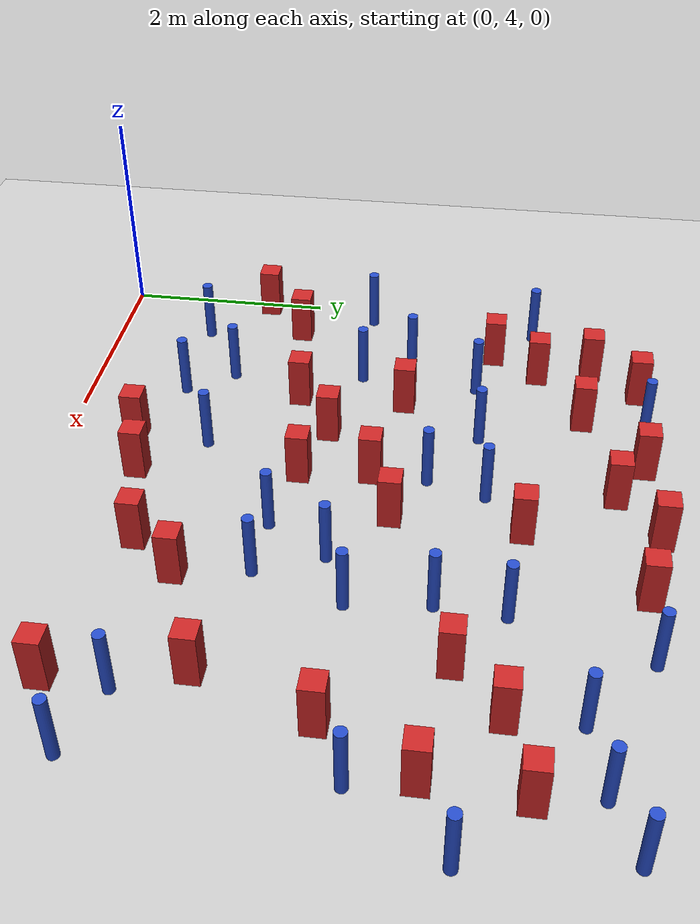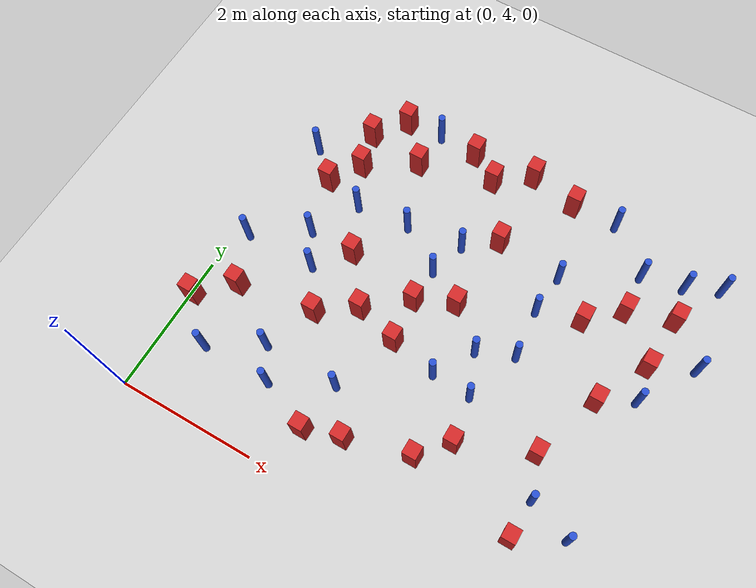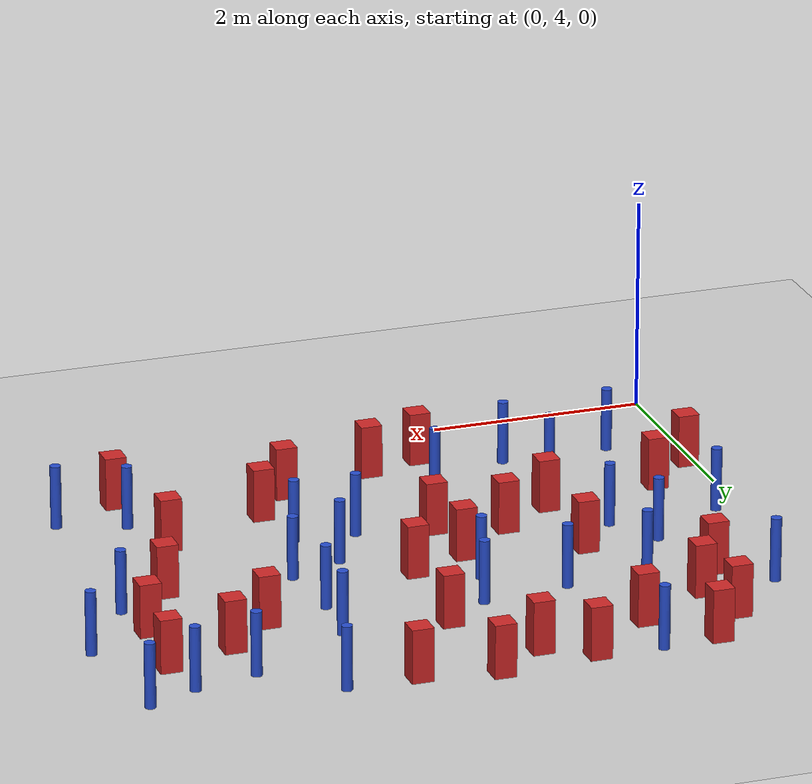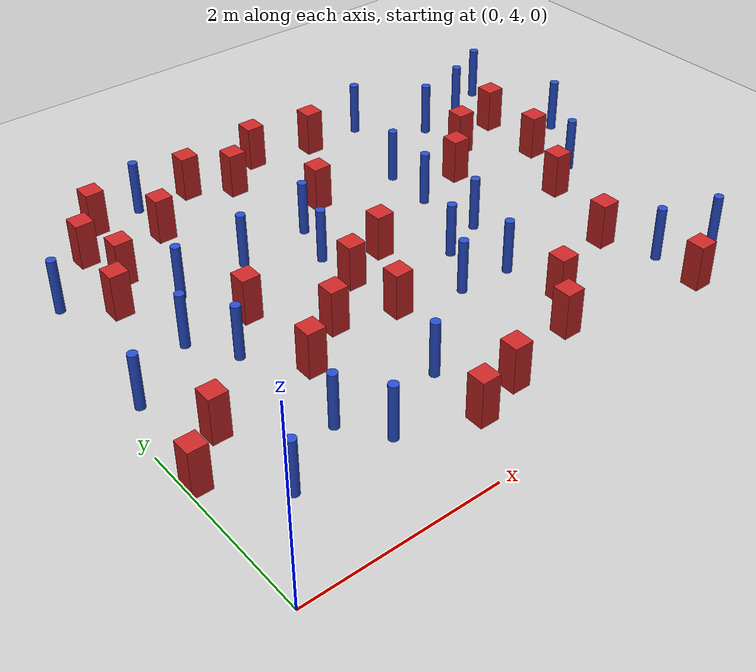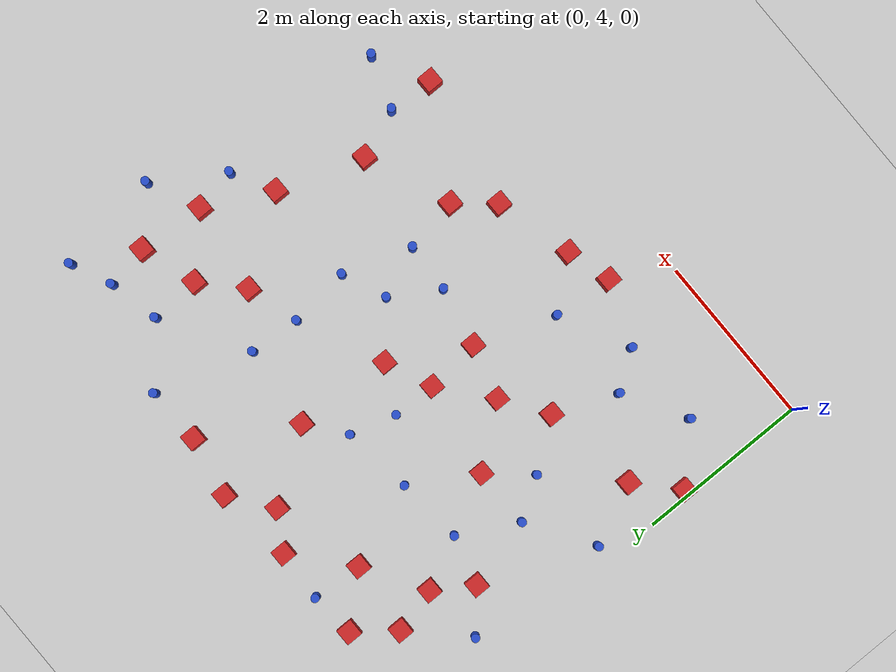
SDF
<sdf version="1.6">
 <world name="default">
  <model name="ground_plane">
   <static>1</static>
   <link name="link">
    <collision name="collision">
     <geometry><plane><normal>0 0 1</normal><size>100 100</size></plane></geometry>
     <surface><friction><ode><mu>100</mu><mu2>50</mu2></ode></friction></surface>
    </collision>
    <visual name="visual">
     <cast_shadows>0</cast_shadows>
     <geometry><plane><normal>0 0 1</normal><size>100 100</size></plane></geometry>
     <material>
      <ambient>1.0 1.0 1.0 1.0</ambient>
      <diffuse>0.8 0.8 0.8 1.0</diffuse>
      <specular>0.01 0.01 0.01 1.000000</specular>
     </material>
    </visual>
   </link>
  </model>
  <model name="pole_obstacle5">
   <static>true</static>
   <pose>5.98320436551 7.11460259568 -9.47619616065e-06 5.49618799737e-07 2.36310414037e-07 -1.55090534814e-07</pose>
   <link name="link">
    <pose>0 0 0.3 0 -0 0</pose>
    <inertial>
     <mass>1</mass>
     <inertia><ixx>0.145833</ixx><ixy>0</ixy><ixz>0</ixz><iyy>0.145833</iyy><iyz>0</iyz><izz>0.125</izz></inertia>
    </inertial>
    <collision name="collision">
     <geometry><cylinder><radius>0.05</radius><length>.6</length></cylinder></geometry>
    </collision>
    <visual name="visual">
     <geometry><cylinder><radius>0.05</radius><length>.6</length></cylinder></geometry>
     <material>
      <script><name>Gazebo/Blue</name><uri>file://media/materials/scripts/gazebo.material</uri></script>
     </material>
    </visual>
   </link>
  </model>
  <model name="square_post_obstacle8">
   <static>true</static>
   <pose>2.80304311402 6.26431948631 -6.11067671241e-07 -5.50515727128e-06 -8.79689657224e-07 2.37013304536e-05</pose>
   <link name="link">
    <pose>0 0 0.25 0 -0 0</pose>
    <inertial>
     <mass>100</mass>
     <inertia>
      <ixx>0.166667</ixx>
      <ixy>0</ixy>
      <ixz>0</ixz>
      <iyy>0.166667</iyy>
      <iyz>0</iyz>
      <izz>0.166667</izz>
     </inertia>
    </inertial>
    <collision name="collision"><geometry><box><size>.2 .2 .5</size></box></geometry></collision>
    <visual name="visual">
     <geometry><box><size>.2 .2 .5</size></box></geometry>
     <material>
      <script><name>Gazebo/Red</name><uri>file://media/materials/scripts/gazebo.material</uri></script>
     </material>
    </visual>
   </link>
  </model>
  <model name="square_post_obstacle10">
   <static>true</static>
   <pose>3.98002741322 9.29334098862 -6.11067671241e-07 -5.50515727128e-06 -8.79689657224e-07 2.37013304536e-05</pose>
   <link name="link">
    <pose>0 0 0.25 0 -0 0</pose>
    <inertial>
     <mass>100</mass>
     <inertia>
      <ixx>0.166667</ixx>
      <ixy>0</ixy>
      <ixz>0</ixz>
      <iyy>0.166667</iyy>
      <iyz>0</iyz>
      <izz>0.166667</izz>
     </inertia>
    </inertial>
    <collision name="collision"><geometry><box><size>.2 .2 .5</size></box></geometry></collision>
    <visual name="visual">
     <geometry><box><size>.2 .2 .5</size></box></geometry>
     <material>
      <script><name>Gazebo/Red</name><uri>file://media/materials/scripts/gazebo.material</uri></script>
     </material>
    </visual>
   </link>
  </model>
  <model name="square_post_obstacle20">
   <static>true</static>
   <pose>1.66274013713 6.0871946994 -6.11067671241e-07 -5.50515727128e-06 -8.79689657224e-07 2.37013304536e-05</pose>
   <link name="link">
    <pose>0 0 0.25 0 -0 0</pose>
    <inertial>
     <mass>100</mass>
     <inertia>
      <ixx>0.166667</ixx>
      <ixy>0</ixy>
      <ixz>0</ixz>
      <iyy>0.166667</iyy>
      <iyz>0</iyz>
      <izz>0.166667</izz>
     </inertia>
    </inertial>
    <collision name="collision"><geometry><box><size>.2 .2 .5</size></box></geometry></collision>
    <visual name="visual">
     <geometry><box><size>.2 .2 .5</size></box></geometry>
     <material>
      <script><name>Gazebo/Red</name><uri>file://media/materials/scripts/gazebo.material</uri></script>
     </material>
    </visual>
   </link>
  </model>
  <model name="pole_obstacle32">
   <static>true</static>
   <pose>1.66683725372 4.93883196598 -9.47619616065e-06 5.49618799737e-07 2.36310414061e-07 -1.550905348e-07</pose>
   <link name="link">
    <pose>0 0 0.3 0 -0 0</pose>
    <inertial>
     <mass>1</mass>
     <inertia><ixx>0.145833</ixx><ixy>0</ixy><ixz>0</ixz><iyy>0.145833</iyy><iyz>0</iyz><izz>0.125</izz></inertia>
    </inertial>
    <collision name="collision">
     <geometry><cylinder><radius>0.05</radius><length>.6</length></cylinder></geometry>
    </collision>
    <visual name="visual">
     <geometry><cylinder><radius>0.05</radius><length>.6</length></cylinder></geometry>
     <material>
      <script><name>Gazebo/Blue</name><uri>file://media/materials/scripts/gazebo.material</uri></script>
     </material>
    </visual>
   </link>
  </model>
  <model name="pole_obstacle34">
   <static>true</static>
   <pose>3.49092755362 6.12223553891 -9.47619616065e-06 5.49618799738e-07 2.3631041406e-07 -1.55090534801e-07</pose>
   <link name="link">
    <pose>0 0 0.3 0 -0 0</pose>
    <inertial>
     <mass>1</mass>
     <inertia><ixx>0.145833</ixx><ixy>0</ixy><ixz>0</ixz><iyy>0.145833</iyy><iyz>0</iyz><izz>0.125</izz></inertia>
    </inertial>
    <collision name="collision">
     <geometry><cylinder><radius>0.05</radius><length>.6</length></cylinder></geometry>
    </collision>
    <visual name="visual">
     <geometry><cylinder><radius>0.05</radius><length>.6</length></cylinder></geometry>
     <material>
      <script><name>Gazebo/Blue</name><uri>file://media/materials/scripts/gazebo.material</uri></script>
     </material>
    </visual>
   </link>
  </model>
  <model name="pole_obstacle40">
   <static>true</static>
   <pose>5.9824951866 5.08745850823 -9.47619616065e-06 5.49618799737e-07 2.36310414037e-07 -1.55090534814e-07</pose>
   <link name="link">
    <pose>0 0 0.3 0 -0 0</pose>
    <inertial>
     <mass>1</mass>
     <inertia><ixx>0.145833</ixx><ixy>0</ixy><ixz>0</ixz><iyy>0.145833</iyy><iyz>0</iyz><izz>0.125</izz></inertia>
    </inertial>
    <collision name="collision">
     <geometry><cylinder><radius>0.05</radius><length>.6</length></cylinder></geometry>
    </collision>
    <visual name="visual">
     <geometry><cylinder><radius>0.05</radius><length>.6</length></cylinder></geometry>
     <material>
      <script><name>Gazebo/Blue</name><uri>file://media/materials/scripts/gazebo.material</uri></script>
     </material>
    </visual>
   </link>
  </model>
  <model name="square_post_obstacle34">
   <static>true</static>
   <pose>2.36845487148 9.3378108632 -6.11067671241e-07 -5.50515727128e-06 -8.79689657224e-07 2.37013304536e-05</pose>
   <link name="link">
    <pose>0 0 0.25 0 -0 0</pose>
    <inertial>
     <mass>100</mass>
     <inertia>
      <ixx>0.166667</ixx>
      <ixy>0</ixy>
      <ixz>0</ixz>
      <iyy>0.166667</iyy>
      <iyz>0</iyz>
      <izz>0.166667</izz>
     </inertia>
    </inertial>
    <collision name="collision"><geometry><box><size>.2 .2 .5</size></box></geometry></collision>
    <visual name="visual">
     <geometry><box><size>.2 .2 .5</size></box></geometry>
     <material>
      <script><name>Gazebo/Red</name><uri>file://media/materials/scripts/gazebo.material</uri></script>
     </material>
    </visual>
   </link>
  </model>
  <model name="square_post_obstacle35">
   <static>true</static>
   <pose>3.2795673195 7.13819909499 -6.11067671241e-07 -5.50515727128e-06 -8.79689657224e-07 2.37013304536e-05</pose>
   <link name="link">
    <pose>0 0 0.25 0 -0 0</pose>
    <inertial>
     <mass>100</mass>
     <inertia>
      <ixx>0.166667</ixx>
      <ixy>0</ixy>
      <ixz>0</ixz>
      <iyy>0.166667</iyy>
      <iyz>0</iyz>
      <izz>0.166667</izz>
     </inertia>
    </inertial>
    <collision name="collision"><geometry><box><size>.2 .2 .5</size></box></geometry></collision>
    <visual name="visual">
     <geometry><box><size>.2 .2 .5</size></box></geometry>
     <material>
      <script><name>Gazebo/Red</name><uri>file://media/materials/scripts/gazebo.material</uri></script>
     </material>
    </visual>
   </link>
  </model>
  <model name="pole_obstacle55">
   <static>true</static>
   <pose>0.654434488628 4.94611700981 -9.47619616065e-06 5.49618799737e-07 2.36310414065e-07 -1.55090534796e-07</pose>
   <link name="link">
    <pose>0 0 0.3 0 -0 0</pose>
    <inertial>
     <mass>1</mass>
     <inertia><ixx>0.145833</ixx><ixy>0</ixy><ixz>0</ixz><iyy>0.145833</iyy><iyz>0</iyz><izz>0.125</izz></inertia>
    </inertial>
    <collision name="collision">
     <geometry><cylinder><radius>0.05</radius><length>.6</length></cylinder></geometry>
    </collision>
    <visual name="visual">
     <geometry><cylinder><radius>0.05</radius><length>.6</length></cylinder></geometry>
     <material>
      <script><name>Gazebo/Blue</name><uri>file://media/materials/scripts/gazebo.material</uri></script>
     </material>
    </visual>
   </link>
  </model>
  <model name="pole_obstacle57">
   <static>true</static>
   <pose>2.46871520506 5.3457655016 -9.47619616065e-06 5.49618799738e-07 2.3631041406e-07 -1.55090534801e-07</pose>
   <link name="link">
    <pose>0 0 0.3 0 -0 0</pose>
    <inertial>
     <mass>1</mass>
     <inertia><ixx>0.145833</ixx><ixy>0</ixy><ixz>0</ixz><iyy>0.145833</iyy><iyz>0</iyz><izz>0.125</izz></inertia>
    </inertial>
    <collision name="collision">
     <geometry><cylinder><radius>0.05</radius><length>.6</length></cylinder></geometry>
    </collision>
    <visual name="visual">
     <geometry><cylinder><radius>0.05</radius><length>.6</length></cylinder></geometry>
     <material>
      <script><name>Gazebo/Blue</name><uri>file://media/materials/scripts/gazebo.material</uri></script>
     </material>
    </visual>
   </link>
  </model>
  <model name="pole_obstacle59">
   <static>true</static>
   <pose>4.25617741366 7.5921527026 -9.47619616065e-06 5.49618799737e-07 2.36310414037e-07 -1.55090534814e-07</pose>
   <link name="link">
    <pose>0 0 0.3 0 -0 0</pose>
    <inertial>
     <mass>1</mass>
     <inertia><ixx>0.145833</ixx><ixy>0</ixy><ixz>0</ixz><iyy>0.145833</iyy><iyz>0</iyz><izz>0.125</izz></inertia>
    </inertial>
    <collision name="collision">
     <geometry><cylinder><radius>0.05</radius><length>.6</length></cylinder></geometry>
    </collision>
    <visual name="visual">
     <geometry><cylinder><radius>0.05</radius><length>.6</length></cylinder></geometry>
     <material>
      <script><name>Gazebo/Blue</name><uri>file://media/materials/scripts/gazebo.material</uri></script>
     </material>
    </visual>
   </link>
  </model>
  <model name="square_post_obstacle50">
   <static>true</static>
   <pose>2.74202276471 6.90351014414 -6.11067671241e-07 -5.50515727128e-06 -8.79689657224e-07 2.37013304536e-05</pose>
   <link name="link">
    <pose>0 0 0.25 0 -0 0</pose>
    <inertial>
     <mass>100</mass>
     <inertia>
      <ixx>0.166667</ixx>
      <ixy>0</ixy>
      <ixz>0</ixz>
      <iyy>0.166667</iyy>
      <iyz>0</iyz>
      <izz>0.166667</izz>
     </inertia>
    </inertial>
    <collision name="collision"><geometry><box><size>.2 .2 .5</size></box></geometry></collision>
    <visual name="visual">
     <geometry><box><size>.2 .2 .5</size></box></geometry>
     <material>
      <script><name>Gazebo/Red</name><uri>file://media/materials/scripts/gazebo.material</uri></script>
     </material>
    </visual>
   </link>
  </model>
  <model name="square_post_obstacle57">
   <static>true</static>
   <pose>5.30183350801 8.18584900938 -6.11067671241e-07 -5.50515727128e-06 -8.79689657224e-07 2.37013304536e-05</pose>
   <link name="link">
    <pose>0 0 0.25 0 -0 0</pose>
    <inertial>
     <mass>100</mass>
     <inertia>
      <ixx>0.166667</ixx>
      <ixy>0</ixy>
      <ixz>0</ixz>
      <iyy>0.166667</iyy>
      <iyz>0</iyz>
      <izz>0.166667</izz>
     </inertia>
    </inertial>
    <collision name="collision"><geometry><box><size>.2 .2 .5</size></box></geometry></collision>
    <visual name="visual">
     <geometry><box><size>.2 .2 .5</size></box></geometry>
     <material>
      <script><name>Gazebo/Red</name><uri>file://media/materials/scripts/gazebo.material</uri></script>
     </material>
    </visual>
   </link>
  </model>
  <model name="square_post_obstacle62">
   <static>true</static>
   <pose>0.89772568856 8.88557476661 -6.11067671241e-07 -5.50515727128e-06 -8.79689657224e-07 2.37013304536e-05</pose>
   <link name="link">
    <pose>0 0 0.25 0 -0 0</pose>
    <inertial>
     <mass>100</mass>
     <inertia>
      <ixx>0.166667</ixx>
      <ixy>0</ixy>
      <ixz>0</ixz>
      <iyy>0.166667</iyy>
      <iyz>0</iyz>
      <izz>0.166667</izz>
     </inertia>
    </inertial>
    <collision name="collision"><geometry><box><size>.2 .2 .5</size></box></geometry></collision>
    <visual name="visual">
     <geometry><box><size>.2 .2 .5</size></box></geometry>
     <material>
      <script><name>Gazebo/Red</name><uri>file://media/materials/scripts/gazebo.material</uri></script>
     </material>
    </visual>
   </link>
  </model>
  <model name="square_post_obstacle64">
   <static>true</static>
   <pose>5.89388399748 7.61573891069 -6.11067671241e-07 -5.50515727128e-06 -8.79689657224e-07 2.37013304536e-05</pose>
   <link name="link">
    <pose>0 0 0.25 0 -0 0</pose>
    <inertial>
     <mass>100</mass>
     <inertia>
      <ixx>0.166667</ixx>
      <ixy>0</ixy>
      <ixz>0</ixz>
      <iyy>0.166667</iyy>
      <iyz>0</iyz>
      <izz>0.166667</izz>
     </inertia>
    </inertial>
    <collision name="collision"><geometry><box><size>.2 .2 .5</size></box></geometry></collision>
    <visual name="visual">
     <geometry><box><size>.2 .2 .5</size></box></geometry>
     <material>
      <script><name>Gazebo/Red</name><uri>file://media/materials/scripts/gazebo.material</uri></script>
     </material>
    </visual>
   </link>
  </model>
  <model name="pole_obstacle75">
   <static>true</static>
   <pose>5.37899989778 5.30028284444 -9.47619616065e-06 5.49618799737e-07 2.36310414037e-07 -1.55090534814e-07</pose>
   <link name="link">
    <pose>0 0 0.3 0 -0 0</pose>
    <inertial>
     <mass>1</mass>
     <inertia><ixx>0.145833</ixx><ixy>0</ixy><ixz>0</ixz><iyy>0.145833</iyy><iyz>0</iyz><izz>0.125</izz></inertia>
    </inertial>
    <collision name="collision">
     <geometry><cylinder><radius>0.05</radius><length>.6</length></cylinder></geometry>
    </collision>
    <visual name="visual">
     <geometry><cylinder><radius>0.05</radius><length>.6</length></cylinder></geometry>
     <material>
      <script><name>Gazebo/Blue</name><uri>file://media/materials/scripts/gazebo.material</uri></script>
     </material>
    </visual>
   </link>
  </model>
  <model name="square_post_obstacle65">
   <static>true</static>
   <pose>1.65623508422 7.09691944303 -6.11067671241e-07 -5.50515727128e-06 -8.79689657224e-07 2.37013304536e-05</pose>
   <link name="link">
    <pose>0 0 0.25 0 -0 0</pose>
    <inertial>
     <mass>100</mass>
     <inertia>
      <ixx>0.166667</ixx>
      <ixy>0</ixy>
      <ixz>0</ixz>
      <iyy>0.166667</iyy>
      <iyz>0</iyz>
      <izz>0.166667</izz>
     </inertia>
    </inertial>
    <collision name="collision"><geometry><box><size>.2 .2 .5</size></box></geometry></collision>
    <visual name="visual">
     <geometry><box><size>.2 .2 .5</size></box></geometry>
     <material>
      <script><name>Gazebo/Red</name><uri>file://media/materials/scripts/gazebo.material</uri></script>
     </material>
    </visual>
   </link>
  </model>
  <model name="pole_obstacle77">
   <static>true</static>
   <pose>5.27312361076 8.7692603319 -9.47619616065e-06 5.49618799737e-07 2.36310414065e-07 -1.55090534796e-07</pose>
   <link name="link">
    <pose>0 0 0.3 0 -0 0</pose>
    <inertial>
     <mass>1</mass>
     <inertia><ixx>0.145833</ixx><ixy>0</ixy><ixz>0</ixz><iyy>0.145833</iyy><iyz>0</iyz><izz>0.125</izz></inertia>
    </inertial>
    <collision name="collision">
     <geometry><cylinder><radius>0.05</radius><length>.6</length></cylinder></geometry>
    </collision>
    <visual name="visual">
     <geometry><cylinder><radius>0.05</radius><length>.6</length></cylinder></geometry>
     <material>
      <script><name>Gazebo/Blue</name><uri>file://media/materials/scripts/gazebo.material</uri></script>
     </material>
    </visual>
   </link>
  </model>
  <model name="square_post_obstacle72">
   <static>true</static>
   <pose>4.86092031322 7.77419742788 -6.11067671241e-07 -5.50515727128e-06 -8.79689657224e-07 2.37013304536e-05</pose>
   <link name="link">
    <pose>0 0 0.25 0 -0 0</pose>
    <inertial>
     <mass>100</mass>
     <inertia>
      <ixx>0.166667</ixx>
      <ixy>0</ixy>
      <ixz>0</ixz>
      <iyy>0.166667</iyy>
      <iyz>0</iyz>
      <izz>0.166667</izz>
     </inertia>
    </inertial>
    <collision name="collision"><geometry><box><size>.2 .2 .5</size></box></geometry></collision>
    <visual name="visual">
     <geometry><box><size>.2 .2 .5</size></box></geometry>
     <material>
      <script><name>Gazebo/Red</name><uri>file://media/materials/scripts/gazebo.material</uri></script>
     </material>
    </visual>
   </link>
  </model>
  <model name="square_post_obstacle77">
   <static>true</static>
   <pose>5.35019759368 4.76959102154 -6.11067671241e-07 -5.50515727128e-06 -8.79689657224e-07 2.37013304536e-05</pose>
   <link name="link">
    <pose>0 0 0.25 0 -0 0</pose>
    <inertial>
     <mass>100</mass>
     <inertia>
      <ixx>0.166667</ixx>
      <ixy>0</ixy>
      <ixz>0</ixz>
      <iyy>0.166667</iyy>
      <iyz>0</iyz>
      <izz>0.166667</izz>
     </inertia>
    </inertial>
    <collision name="collision"><geometry><box><size>.2 .2 .5</size></box></geometry></collision>
    <visual name="visual">
     <geometry><box><size>.2 .2 .5</size></box></geometry>
     <material>
      <script><name>Gazebo/Red</name><uri>file://media/materials/scripts/gazebo.material</uri></script>
     </material>
    </visual>
   </link>
  </model>
  <model name="pole_obstacle94">
   <static>true</static>
   <pose>4.33132962846 6.88275366932 -9.47619616065e-06 5.49618799737e-07 2.36310414037e-07 -1.55090534814e-07</pose>
   <link name="link">
    <pose>0 0 0.3 0 -0 0</pose>
    <inertial>
     <mass>1</mass>
     <inertia><ixx>0.145833</ixx><ixy>0</ixy><ixz>0</ixz><iyy>0.145833</iyy><iyz>0</iyz><izz>0.125</izz></inertia>
    </inertial>
    <collision name="collision">
     <geometry><cylinder><radius>0.05</radius><length>.6</length></cylinder></geometry>
    </collision>
    <visual name="visual">
     <geometry><cylinder><radius>0.05</radius><length>.6</length></cylinder></geometry>
     <material>
      <script><name>Gazebo/Blue</name><uri>file://media/materials/scripts/gazebo.material</uri></script>
     </material>
    </visual>
   </link>
  </model>
  <model name="pole_obstacle95">
   <static>true</static>
   <pose>0.31331359335 8.30274037362 -9.47619616065e-06 5.49618799737e-07 2.36310414031e-07 -1.55090534818e-07</pose>
   <link name="link">
    <pose>0 0 0.3 0 -0 0</pose>
    <inertial>
     <mass>1</mass>
     <inertia><ixx>0.145833</ixx><ixy>0</ixy><ixz>0</ixz><iyy>0.145833</iyy><iyz>0</iyz><izz>0.125</izz></inertia>
    </inertial>
    <collision name="collision">
     <geometry><cylinder><radius>0.05</radius><length>.6</length></cylinder></geometry>
    </collision>
    <visual name="visual">
     <geometry><cylinder><radius>0.05</radius><length>.6</length></cylinder></geometry>
     <material>
      <script><name>Gazebo/Blue</name><uri>file://media/materials/scripts/gazebo.material</uri></script>
     </material>
    </visual>
   </link>
  </model>
  <model name="square_post_obstacle88">
   <static>true</static>
   <pose>5.50472264688 6.85226527644 -6.11067671241e-07 -5.50515727128e-06 -8.79689657224e-07 2.37013304536e-05</pose>
   <link name="link">
    <pose>0 0 0.25 0 -0 0</pose>
    <inertial>
     <mass>100</mass>
     <inertia>
      <ixx>0.166667</ixx>
      <ixy>0</ixy>
      <ixz>0</ixz>
      <iyy>0.166667</iyy>
      <iyz>0</iyz>
      <izz>0.166667</izz>
     </inertia>
    </inertial>
    <collision name="collision"><geometry><box><size>.2 .2 .5</size></box></geometry></collision>
    <visual name="visual">
     <geometry><box><size>.2 .2 .5</size></box></geometry>
     <material>
      <script><name>Gazebo/Red</name><uri>file://media/materials/scripts/gazebo.material</uri></script>
     </material>
    </visual>
   </link>
  </model>
  <model name="pole_obstacle104">
   <static>true</static>
   <pose>5.86294604561 8.9028717614 -9.47619616065e-06 5.49618799737e-07 2.36310414065e-07 -1.55090534796e-07</pose>
   <link name="link">
    <pose>0 0 0.3 0 -0 0</pose>
    <inertial>
     <mass>1</mass>
     <inertia><ixx>0.145833</ixx><ixy>0</ixy><ixz>0</ixz><iyy>0.145833</iyy><iyz>0</iyz><izz>0.125</izz></inertia>
    </inertial>
    <collision name="collision">
     <geometry><cylinder><radius>0.05</radius><length>.6</length></cylinder></geometry>
    </collision>
    <visual name="visual">
     <geometry><cylinder><radius>0.05</radius><length>.6</length></cylinder></geometry>
     <material>
      <script><name>Gazebo/Blue</name><uri>file://media/materials/scripts/gazebo.material</uri></script>
     </material>
    </visual>
   </link>
  </model>
  <model name="pole_obstacle105">
   <static>true</static>
   <pose>0.219890187356 6.62176034969 -9.47619616065e-06 5.49618799737e-07 2.36310414069e-07 -1.55090534795e-07</pose>
   <link name="link">
    <pose>0 0 0.3 0 -0 0</pose>
    <inertial>
     <mass>1</mass>
     <inertia><ixx>0.145833</ixx><ixy>0</ixy><ixz>0</ixz><iyy>0.145833</iyy><iyz>0</iyz><izz>0.125</izz></inertia>
    </inertial>
    <collision name="collision">
     <geometry><cylinder><radius>0.05</radius><length>.6</length></cylinder></geometry>
    </collision>
    <visual name="visual">
     <geometry><cylinder><radius>0.05</radius><length>.6</length></cylinder></geometry>
     <material>
      <script><name>Gazebo/Blue</name><uri>file://media/materials/scripts/gazebo.material</uri></script>
     </material>
    </visual>
   </link>
  </model>
  <model name="pole_obstacle114">
   <static>true</static>
   <pose>4.63810552758 9.31013189507 -9.47619616065e-06 5.49618799737e-07 2.36310414065e-07 -1.55090534796e-07</pose>
   <link name="link">
    <pose>0 0 0.3 0 -0 0</pose>
    <inertial>
     <mass>1</mass>
     <inertia><ixx>0.145833</ixx><ixy>0</ixy><ixz>0</ixz><iyy>0.145833</iyy><iyz>0</iyz><izz>0.125</izz></inertia>
    </inertial>
    <collision name="collision">
     <geometry><cylinder><radius>0.05</radius><length>.6</length></cylinder></geometry>
    </collision>
    <visual name="visual">
     <geometry><cylinder><radius>0.05</radius><length>.6</length></cylinder></geometry>
     <material>
      <script><name>Gazebo/Blue</name><uri>file://media/materials/scripts/gazebo.material</uri></script>
     </material>
    </visual>
   </link>
  </model>
  <model name="square_post_obstacle111">
   <static>true</static>
   <pose>0.0888117992284 5.49441332184 -6.11067671241e-07 -5.50515727128e-06 -8.79689657224e-07 2.37013304536e-05</pose>
   <link name="link">
    <pose>0 0 0.25 0 -0 0</pose>
    <inertial>
     <mass>100</mass>
     <inertia>
      <ixx>0.166667</ixx>
      <ixy>0</ixy>
      <ixz>0</ixz>
      <iyy>0.166667</iyy>
      <iyz>0</iyz>
      <izz>0.166667</izz>
     </inertia>
    </inertial>
    <collision name="collision"><geometry><box><size>.2 .2 .5</size></box></geometry></collision>
    <visual name="visual">
     <geometry><box><size>.2 .2 .5</size></box></geometry>
     <material>
      <script><name>Gazebo/Red</name><uri>file://media/materials/scripts/gazebo.material</uri></script>
     </material>
    </visual>
   </link>
  </model>
  <model name="pole_obstacle118">
   <static>true</static>
   <pose>2.75282625561 7.41135327777 -9.47619616065e-06 5.49618799738e-07 2.3631041406e-07 -1.55090534801e-07</pose>
   <link name="link">
    <pose>0 0 0.3 0 -0 0</pose>
    <inertial>
     <mass>1</mass>
     <inertia><ixx>0.145833</ixx><ixy>0</ixy><ixz>0</ixz><iyy>0.145833</iyy><iyz>0</iyz><izz>0.125</izz></inertia>
    </inertial>
    <collision name="collision">
     <geometry><cylinder><radius>0.05</radius><length>.6</length></cylinder></geometry>
    </collision>
    <visual name="visual">
     <geometry><cylinder><radius>0.05</radius><length>.6</length></cylinder></geometry>
     <material>
      <script><name>Gazebo/Blue</name><uri>file://media/materials/scripts/gazebo.material</uri></script>
     </material>
    </visual>
   </link>
  </model>
  <model name="pole_obstacle119">
   <static>true</static>
   <pose>1.32074343882 7.76852007976 -9.47619616065e-06 5.49618799737e-07 2.36310414061e-07 -1.550905348e-07</pose>
   <link name="link">
    <pose>0 0 0.3 0 -0 0</pose>
    <inertial>
     <mass>1</mass>
     <inertia><ixx>0.145833</ixx><ixy>0</ixy><ixz>0</ixz><iyy>0.145833</iyy><iyz>0</iyz><izz>0.125</izz></inertia>
    </inertial>
    <collision name="collision">
     <geometry><cylinder><radius>0.05</radius><length>.6</length></cylinder></geometry>
    </collision>
    <visual name="visual">
     <geometry><cylinder><radius>0.05</radius><length>.6</length></cylinder></geometry>
     <material>
      <script><name>Gazebo/Blue</name><uri>file://media/materials/scripts/gazebo.material</uri></script>
     </material>
    </visual>
   </link>
  </model>
  <model name="square_post_obstacle125">
   <static>true</static>
   <pose>3.34150794358 8.27137446159 -6.11067671241e-07 -5.50515727128e-06 -8.79689657224e-07 2.37013304536e-05</pose>
   <link name="link">
    <pose>0 0 0.25 0 -0 0</pose>
    <inertial>
     <mass>100</mass>
     <inertia>
      <ixx>0.166667</ixx>
      <ixy>0</ixy>
      <ixz>0</ixz>
      <iyy>0.166667</iyy>
      <iyz>0</iyz>
      <izz>0.166667</izz>
     </inertia>
    </inertial>
    <collision name="collision"><geometry><box><size>.2 .2 .5</size></box></geometry></collision>
    <visual name="visual">
     <geometry><box><size>.2 .2 .5</size></box></geometry>
     <material>
      <script><name>Gazebo/Red</name><uri>file://media/materials/scripts/gazebo.material</uri></script>
     </material>
    </visual>
   </link>
  </model>
  <model name="square_post_obstacle128">
   <static>true</static>
   <pose>0.745369828656 7.9218903742 -6.11067671241e-07 -5.50515727128e-06 -8.79689657224e-07 2.37013304536e-05</pose>
   <link name="link">
    <pose>0 0 0.25 0 -0 0</pose>
    <inertial>
     <mass>100</mass>
     <inertia>
      <ixx>0.166667</ixx>
      <ixy>0</ixy>
      <ixz>0</ixz>
      <iyy>0.166667</iyy>
      <iyz>0</iyz>
      <izz>0.166667</izz>
     </inertia>
    </inertial>
    <collision name="collision"><geometry><box><size>.2 .2 .5</size></box></geometry></collision>
    <visual name="visual">
     <geometry><box><size>.2 .2 .5</size></box></geometry>
     <material>
      <script><name>Gazebo/Red</name><uri>file://media/materials/scripts/gazebo.material</uri></script>
     </material>
    </visual>
   </link>
  </model>
  <model name="square_post_obstacle129">
   <static>true</static>
   <pose>2.17905276545 6.4393330548 -6.11067671241e-07 -5.50515727128e-06 -8.79689657224e-07 2.37013304536e-05</pose>
   <link name="link">
    <pose>0 0 0.25 0 -0 0</pose>
    <inertial>
     <mass>100</mass>
     <inertia>
      <ixx>0.166667</ixx>
      <ixy>0</ixy>
      <ixz>0</ixz>
      <iyy>0.166667</iyy>
      <iyz>0</iyz>
      <izz>0.166667</izz>
     </inertia>
    </inertial>
    <collision name="collision"><geometry><box><size>.2 .2 .5</size></box></geometry></collision>
    <visual name="visual">
     <geometry><box><size>.2 .2 .5</size></box></geometry>
     <material>
      <script><name>Gazebo/Red</name><uri>file://media/materials/scripts/gazebo.material</uri></script>
     </material>
    </visual>
   </link>
  </model>
  <model name="square_post_obstacle130">
   <static>true</static>
   <pose>0.543801249281 5.91393428315 -6.11067671241e-07 -5.50515727128e-06 -8.79689657224e-07 2.37013304536e-05</pose>
   <link name="link">
    <pose>0 0 0.25 0 -0 0</pose>
    <inertial>
     <mass>100</mass>
     <inertia>
      <ixx>0.166667</ixx>
      <ixy>0</ixy>
      <ixz>0</ixz>
      <iyy>0.166667</iyy>
      <iyz>0</iyz>
      <izz>0.166667</izz>
     </inertia>
    </inertial>
    <collision name="collision"><geometry><box><size>.2 .2 .5</size></box></geometry></collision>
    <visual name="visual">
     <geometry><box><size>.2 .2 .5</size></box></geometry>
     <material>
      <script><name>Gazebo/Red</name><uri>file://media/materials/scripts/gazebo.material</uri></script>
     </material>
    </visual>
   </link>
  </model>
  <model name="pole_obstacle135">
   <static>true</static>
   <pose>4.06219913223 6.0908692259 -9.47619616065e-06 5.49618799737e-07 2.36310414037e-07 -1.55090534814e-07</pose>
   <link name="link">
    <pose>0 0 0.3 0 -0 0</pose>
    <inertial>
     <mass>1</mass>
     <inertia><ixx>0.145833</ixx><ixy>0</ixy><ixz>0</ixz><iyy>0.145833</iyy><iyz>0</iyz><izz>0.125</izz></inertia>
    </inertial>
    <collision name="collision">
     <geometry><cylinder><radius>0.05</radius><length>.6</length></cylinder></geometry>
    </collision>
    <visual name="visual">
     <geometry><cylinder><radius>0.05</radius><length>.6</length></cylinder></geometry>
     <material>
      <script><name>Gazebo/Blue</name><uri>file://media/materials/scripts/gazebo.material</uri></script>
     </material>
    </visual>
   </link>
  </model>
  <model name="square_post_obstacle133">
   <static>true</static>
   <pose>3.82019651171 5.04802634097 -6.11067671241e-07 -5.50515727128e-06 -8.79689657224e-07 2.37013304536e-05</pose>
   <link name="link">
    <pose>0 0 0.25 0 -0 0</pose>
    <inertial>
     <mass>100</mass>
     <inertia>
      <ixx>0.166667</ixx>
      <ixy>0</ixy>
      <ixz>0</ixz>
      <iyy>0.166667</iyy>
      <iyz>0</iyz>
      <izz>0.166667</izz>
     </inertia>
    </inertial>
    <collision name="collision"><geometry><box><size>.2 .2 .5</size></box></geometry></collision>
    <visual name="visual">
     <geometry><box><size>.2 .2 .5</size></box></geometry>
     <material>
      <script><name>Gazebo/Red</name><uri>file://media/materials/scripts/gazebo.material</uri></script>
     </material>
    </visual>
   </link>
  </model>
  <model name="square_post_obstacle135">
   <static>true</static>
   <pose>2.40693115807 4.65109926091 -6.11067671241e-07 -5.50515727128e-06 -8.79689657224e-07 2.37013304536e-05</pose>
   <link name="link">
    <pose>0 0 0.25 0 -0 0</pose>
    <inertial>
     <mass>100</mass>
     <inertia>
      <ixx>0.166667</ixx>
      <ixy>0</ixy>
      <ixz>0</ixz>
      <iyy>0.166667</iyy>
      <iyz>0</iyz>
      <izz>0.166667</izz>
     </inertia>
    </inertial>
    <collision name="collision"><geometry><box><size>.2 .2 .5</size></box></geometry></collision>
    <visual name="visual">
     <geometry><box><size>.2 .2 .5</size></box></geometry>
     <material>
      <script><name>Gazebo/Red</name><uri>file://media/materials/scripts/gazebo.material</uri></script>
     </material>
    </visual>
   </link>
  </model>
  <model name="square_post_obstacle152">
   <static>true</static>
   <pose>5.94818534103 8.39846735175 -6.11067671241e-07 -5.50515727128e-06 -8.79689657224e-07 2.37013304536e-05</pose>
   <link name="link">
    <pose>0 0 0.25 0 -0 0</pose>
    <inertial>
     <mass>100</mass>
     <inertia>
      <ixx>0.166667</ixx>
      <ixy>0</ixy>
      <ixz>0</ixz>
      <iyy>0.166667</iyy>
      <iyz>0</iyz>
      <izz>0.166667</izz>
     </inertia>
    </inertial>
    <collision name="collision"><geometry><box><size>.2 .2 .5</size></box></geometry></collision>
    <visual name="visual">
     <geometry><box><size>.2 .2 .5</size></box></geometry>
     <material>
      <script><name>Gazebo/Red</name><uri>file://media/materials/scripts/gazebo.material</uri></script>
     </material>
    </visual>
   </link>
  </model>
  <model name="square_post_obstacle153">
   <static>true</static>
   <pose>1.24363115183 9.33131907183 -6.11067671241e-07 -5.50515727128e-06 -8.79689657224e-07 2.37013304536e-05</pose>
   <link name="link">
    <pose>0 0 0.25 0 -0 0</pose>
    <inertial>
     <mass>100</mass>
     <inertia>
      <ixx>0.166667</ixx>
      <ixy>0</ixy>
      <ixz>0</ixz>
      <iyy>0.166667</iyy>
      <iyz>0</iyz>
      <izz>0.166667</izz>
     </inertia>
    </inertial>
    <collision name="collision"><geometry><box><size>.2 .2 .5</size></box></geometry></collision>
    <visual name="visual">
     <geometry><box><size>.2 .2 .5</size></box></geometry>
     <material>
      <script><name>Gazebo/Red</name><uri>file://media/materials/scripts/gazebo.material</uri></script>
     </material>
    </visual>
   </link>
  </model>
  <model name="square_post_obstacle162">
   <static>true</static>
   <pose>3.27852452649 9.43213689489 -6.11067671241e-07 -5.50515727128e-06 -8.79689657224e-07 2.37013304536e-05</pose>
   <link name="link">
    <pose>0 0 0.25 0 -0 0</pose>
    <inertial>
     <mass>100</mass>
     <inertia>
      <ixx>0.166667</ixx>
      <ixy>0</ixy>
      <ixz>0</ixz>
      <iyy>0.166667</iyy>
      <iyz>0</iyz>
      <izz>0.166667</izz>
     </inertia>
    </inertial>
    <collision name="collision"><geometry><box><size>.2 .2 .5</size></box></geometry></collision>
    <visual name="visual">
     <geometry><box><size>.2 .2 .5</size></box></geometry>
     <material>
      <script><name>Gazebo/Red</name><uri>file://media/materials/scripts/gazebo.material</uri></script>
     </material>
    </visual>
   </link>
  </model>
  <model name="pole_obstacle167">
   <static>true</static>
   <pose>2.09689857465 7.83785774179 -9.47619616065e-06 5.49618799738e-07 2.3631041406e-07 -1.55090534801e-07</pose>
   <link name="link">
    <pose>0 0 0.3 0 -0 0</pose>
    <inertial>
     <mass>1</mass>
     <inertia><ixx>0.145833</ixx><ixy>0</ixy><ixz>0</ixz><iyy>0.145833</iyy><iyz>0</iyz><izz>0.125</izz></inertia>
    </inertial>
    <collision name="collision">
     <geometry><cylinder><radius>0.05</radius><length>.6</length></cylinder></geometry>
    </collision>
    <visual name="visual">
     <geometry><cylinder><radius>0.05</radius><length>.6</length></cylinder></geometry>
     <material>
      <script><name>Gazebo/Blue</name><uri>file://media/materials/scripts/gazebo.material</uri></script>
     </material>
    </visual>
   </link>
  </model>
  <model name="square_post_obstacle171">
   <static>true</static>
   <pose>5.16451171124 5.86088346477 -6.11067671241e-07 -5.50515727128e-06 -8.79689657224e-07 2.37013304536e-05</pose>
   <link name="link">
    <pose>0 0 0.25 0 -0 0</pose>
    <inertial>
     <mass>100</mass>
     <inertia>
      <ixx>0.166667</ixx>
      <ixy>0</ixy>
      <ixz>0</ixz>
      <iyy>0.166667</iyy>
      <iyz>0</iyz>
      <izz>0.166667</izz>
     </inertia>
    </inertial>
    <collision name="collision"><geometry><box><size>.2 .2 .5</size></box></geometry></collision>
    <visual name="visual">
     <geometry><box><size>.2 .2 .5</size></box></geometry>
     <material>
      <script><name>Gazebo/Red</name><uri>file://media/materials/scripts/gazebo.material</uri></script>
     </material>
    </visual>
   </link>
  </model>
  <model name="pole_obstacle170">
   <static>true</static>
   <pose>1.77219651256 9.37625885892 -9.47619616065e-06 5.49618799737e-07 2.36310414046e-07 -1.55090534809e-07</pose>
   <link name="link">
    <pose>0 0 0.3 0 -0 0</pose>
    <inertial>
     <mass>1</mass>
     <inertia><ixx>0.145833</ixx><ixy>0</ixy><ixz>0</ixz><iyy>0.145833</iyy><iyz>0</iyz><izz>0.125</izz></inertia>
    </inertial>
    <collision name="collision">
     <geometry><cylinder><radius>0.05</radius><length>.6</length></cylinder></geometry>
    </collision>
    <visual name="visual">
     <geometry><cylinder><radius>0.05</radius><length>.6</length></cylinder></geometry>
     <material>
      <script><name>Gazebo/Blue</name><uri>file://media/materials/scripts/gazebo.material</uri></script>
     </material>
    </visual>
   </link>
  </model>
  <model name="pole_obstacle171">
   <static>true</static>
   <pose>1.36788159719 5.36706606232 -9.47619616065e-06 5.49618799737e-07 2.36310414061e-07 -1.550905348e-07</pose>
   <link name="link">
    <pose>0 0 0.3 0 -0 0</pose>
    <inertial>
     <mass>1</mass>
     <inertia><ixx>0.145833</ixx><ixy>0</ixy><ixz>0</ixz><iyy>0.145833</iyy><iyz>0</iyz><izz>0.125</izz></inertia>
    </inertial>
    <collision name="collision">
     <geometry><cylinder><radius>0.05</radius><length>.6</length></cylinder></geometry>
    </collision>
    <visual name="visual">
     <geometry><cylinder><radius>0.05</radius><length>.6</length></cylinder></geometry>
     <material>
      <script><name>Gazebo/Blue</name><uri>file://media/materials/scripts/gazebo.material</uri></script>
     </material>
    </visual>
   </link>
  </model>
  <model name="square_post_obstacle173">
   <static>true</static>
   <pose>1.03084651097 8.3608872701 -6.11067671241e-07 -5.50515727128e-06 -8.79689657224e-07 2.37013304536e-05</pose>
   <link name="link">
    <pose>0 0 0.25 0 -0 0</pose>
    <inertial>
     <mass>100</mass>
     <inertia>
      <ixx>0.166667</ixx>
      <ixy>0</ixy>
      <ixz>0</ixz>
      <iyy>0.166667</iyy>
      <iyz>0</iyz>
      <izz>0.166667</izz>
     </inertia>
    </inertial>
    <collision name="collision"><geometry><box><size>.2 .2 .5</size></box></geometry></collision>
    <visual name="visual">
     <geometry><box><size>.2 .2 .5</size></box></geometry>
     <material>
      <script><name>Gazebo/Red</name><uri>file://media/materials/scripts/gazebo.material</uri></script>
     </material>
    </visual>
   </link>
  </model>
  <model name="pole_obstacle181">
   <static>true</static>
   <pose>1.2564457531 6.64104309751 -9.47619616065e-06 5.49618799737e-07 2.36310414061e-07 -1.550905348e-07</pose>
   <link name="link">
    <pose>0 0 0.3 0 -0 0</pose>
    <inertial>
     <mass>1</mass>
     <inertia><ixx>0.145833</ixx><ixy>0</ixy><ixz>0</ixz><iyy>0.145833</iyy><iyz>0</iyz><izz>0.125</izz></inertia>
    </inertial>
    <collision name="collision">
     <geometry><cylinder><radius>0.05</radius><length>.6</length></cylinder></geometry>
    </collision>
    <visual name="visual">
     <geometry><cylinder><radius>0.05</radius><length>.6</length></cylinder></geometry>
     <material>
      <script><name>Gazebo/Blue</name><uri>file://media/materials/scripts/gazebo.material</uri></script>
     </material>
    </visual>
   </link>
  </model>
  <model name="square_post_obstacle184">
   <static>true</static>
   <pose>2.92345017214 4.80178926228 -6.11067671241e-07 -5.50515727128e-06 -8.79689657224e-07 2.37013304536e-05</pose>
   <link name="link">
    <pose>0 0 0.25 0 -0 0</pose>
    <inertial>
     <mass>100</mass>
     <inertia>
      <ixx>0.166667</ixx>
      <ixy>0</ixy>
      <ixz>0</ixz>
      <iyy>0.166667</iyy>
      <iyz>0</iyz>
      <izz>0.166667</izz>
     </inertia>
    </inertial>
    <collision name="collision"><geometry><box><size>.2 .2 .5</size></box></geometry></collision>
    <visual name="visual">
     <geometry><box><size>.2 .2 .5</size></box></geometry>
     <material>
      <script><name>Gazebo/Red</name><uri>file://media/materials/scripts/gazebo.material</uri></script>
     </material>
    </visual>
   </link>
  </model>
  <model name="square_post_obstacle196">
   <static>true</static>
   <pose>2.79858689657 9.07232370329 -6.11067671241e-07 -5.50515727128e-06 -8.79689657224e-07 2.37013304536e-05</pose>
   <link name="link">
    <pose>0 0 0.25 0 -0 0</pose>
    <inertial>
     <mass>100</mass>
     <inertia>
      <ixx>0.166667</ixx>
      <ixy>0</ixy>
      <ixz>0</ixz>
      <iyy>0.166667</iyy>
      <iyz>0</iyz>
      <izz>0.166667</izz>
     </inertia>
    </inertial>
    <collision name="collision"><geometry><box><size>.2 .2 .5</size></box></geometry></collision>
    <visual name="visual">
     <geometry><box><size>.2 .2 .5</size></box></geometry>
     <material>
      <script><name>Gazebo/Red</name><uri>file://media/materials/scripts/gazebo.material</uri></script>
     </material>
    </visual>
   </link>
  </model>
  <model name="square_post_obstacle204">
   <static>true</static>
   <pose>1.73184820879 8.79172838952 -6.11067671241e-07 -5.50515727128e-06 -8.79689657224e-07 2.37013304536e-05</pose>
   <link name="link">
    <pose>0 0 0.25 0 -0 0</pose>
    <inertial>
     <mass>100</mass>
     <inertia>
      <ixx>0.166667</ixx>
      <ixy>0</ixy>
      <ixz>0</ixz>
      <iyy>0.166667</iyy>
      <iyz>0</iyz>
      <izz>0.166667</izz>
     </inertia>
    </inertial>
    <collision name="collision"><geometry><box><size>.2 .2 .5</size></box></geometry></collision>
    <visual name="visual">
     <geometry><box><size>.2 .2 .5</size></box></geometry>
     <material>
      <script><name>Gazebo/Red</name><uri>file://media/materials/scripts/gazebo.material</uri></script>
     </material>
    </visual>
   </link>
  </model>
  <model name="square_post_obstacle205">
   <static>true</static>
   <pose>4.17046761373 5.46047383137 -6.11067671241e-07 -5.50515727128e-06 -8.79689657224e-07 2.37013304536e-05</pose>
   <link name="link">
    <pose>0 0 0.25 0 -0 0</pose>
    <inertial>
     <mass>100</mass>
     <inertia>
      <ixx>0.166667</ixx>
      <ixy>0</ixy>
      <ixz>0</ixz>
      <iyy>0.166667</iyy>
      <iyz>0</iyz>
      <izz>0.166667</izz>
     </inertia>
    </inertial>
    <collision name="collision"><geometry><box><size>.2 .2 .5</size></box></geometry></collision>
    <visual name="visual">
     <geometry><box><size>.2 .2 .5</size></box></geometry>
     <material>
      <script><name>Gazebo/Red</name><uri>file://media/materials/scripts/gazebo.material</uri></script>
     </material>
    </visual>
   </link>
  </model>
  <model name="pole_obstacle207">
   <static>true</static>
   <pose>0.961331509093 7.10015412629 -9.47619616065e-06 5.49618799737e-07 2.36310414071e-07 -1.55090534793e-07</pose>
   <link name="link">
    <pose>0 0 0.3 0 -0 0</pose>
    <inertial>
     <mass>1</mass>
     <inertia><ixx>0.145833</ixx><ixy>0</ixy><ixz>0</ixz><iyy>0.145833</iyy><iyz>0</iyz><izz>0.125</izz></inertia>
    </inertial>
    <collision name="collision">
     <geometry><cylinder><radius>0.05</radius><length>.6</length></cylinder></geometry>
    </collision>
    <visual name="visual">
     <geometry><cylinder><radius>0.05</radius><length>.6</length></cylinder></geometry>
     <material>
      <script><name>Gazebo/Blue</name><uri>file://media/materials/scripts/gazebo.material</uri></script>
     </material>
    </visual>
   </link>
  </model>
  <model name="pole_obstacle211">
   <static>true</static>
   <pose>6.48715760808 7.89167157066 -9.47619616065e-06 5.49618799737e-07 2.36310414037e-07 -1.55090534814e-07</pose>
   <link name="link">
    <pose>0 0 0.3 0 -0 0</pose>
    <inertial>
     <mass>1</mass>
     <inertia><ixx>0.145833</ixx><ixy>0</ixy><ixz>0</ixz><iyy>0.145833</iyy><iyz>0</iyz><izz>0.125</izz></inertia>
    </inertial>
    <collision name="collision">
     <geometry><cylinder><radius>0.05</radius><length>.6</length></cylinder></geometry>
    </collision>
    <visual name="visual">
     <geometry><cylinder><radius>0.05</radius><length>.6</length></cylinder></geometry>
     <material>
      <script><name>Gazebo/Blue</name><uri>file://media/materials/scripts/gazebo.material</uri></script>
     </material>
    </visual>
   </link>
  </model>
  <model name="pole_obstacle213">
   <static>true</static>
   <pose>4.30015656083 8.1821728877 -9.47619616065e-06 5.49618799737e-07 2.36310414065e-07 -1.55090534796e-07</pose>
   <link name="link">
    <pose>0 0 0.3 0 -0 0</pose>
    <inertial>
     <mass>1</mass>
     <inertia><ixx>0.145833</ixx><ixy>0</ixy><ixz>0</ixz><iyy>0.145833</iyy><iyz>0</iyz><izz>0.125</izz></inertia>
    </inertial>
    <collision name="collision">
     <geometry><cylinder><radius>0.05</radius><length>.6</length></cylinder></geometry>
    </collision>
    <visual name="visual">
     <geometry><cylinder><radius>0.05</radius><length>.6</length></cylinder></geometry>
     <material>
      <script><name>Gazebo/Blue</name><uri>file://media/materials/scripts/gazebo.material</uri></script>
     </material>
    </visual>
   </link>
  </model>
  <model name="pole_obstacle219">
   <static>true</static>
   <pose>3.82221000939 6.66868002078 -9.47619616065e-06 5.49618799738e-07 2.3631041406e-07 -1.55090534801e-07</pose>
   <link name="link">
    <pose>0 0 0.3 0 -0 0</pose>
    <inertial>
     <mass>1</mass>
     <inertia><ixx>0.145833</ixx><ixy>0</ixy><ixz>0</ixz><iyy>0.145833</iyy><iyz>0</iyz><izz>0.125</izz></inertia>
    </inertial>
    <collision name="collision">
     <geometry><cylinder><radius>0.05</radius><length>.6</length></cylinder></geometry>
    </collision>
    <visual name="visual">
     <geometry><cylinder><radius>0.05</radius><length>.6</length></cylinder></geometry>
     <material>
      <script><name>Gazebo/Blue</name><uri>file://media/materials/scripts/gazebo.material</uri></script>
     </material>
    </visual>
   </link>
  </model>
  <model name="pole_obstacle226">
   <static>true</static>
   <pose>6.32853000939 9.11142002078 -9.47619616065e-06 5.49618799737e-07 2.36310414065e-07 -1.55090534796e-07</pose>
   <link name="link">
    <pose>0 0 0.3 0 -0 0</pose>
    <inertial>
     <mass>1</mass>
     <inertia><ixx>0.145833</ixx><ixy>0</ixy><ixz>0</ixz><iyy>0.145833</iyy><iyz>0</iyz><izz>0.125</izz></inertia>
    </inertial>
    <collision name="collision">
     <geometry><cylinder><radius>0.05</radius><length>.6</length></cylinder></geometry>
    </collision>
    <visual name="visual">
     <geometry><cylinder><radius>0.05</radius><length>.6</length></cylinder></geometry>
     <material>
      <script><name>Gazebo/Blue</name><uri>file://media/materials/scripts/gazebo.material</uri></script>
     </material>
    </visual>
   </link>
  </model>
  <model name="pole_obstacle229">
   <static>true</static>
   <pose>2.91098000939 7.93984002078 -9.4761961606e-06 5.49618799729e-07 2.36310414006e-07 -1.55090534822e-07</pose>
   <link name="link">
    <pose>0 0 0.3 0 -0 0</pose>
    <inertial>
     <mass>1</mass>
     <inertia><ixx>0.145833</ixx><ixy>0</ixy><ixz>0</ixz><iyy>0.145833</iyy><iyz>0</iyz><izz>0.125</izz></inertia>
    </inertial>
    <collision name="collision">
     <geometry><cylinder><radius>0.05</radius><length>.6</length></cylinder></geometry>
    </collision>
    <visual name="visual">
     <geometry><cylinder><radius>0.05</radius><length>.6</length></cylinder></geometry>
     <material>
      <script><name>Gazebo/Blue</name><uri>file://media/materials/scripts/gazebo.material</uri></script>
     </material>
    </visual>
   </link>
  </model>
 </world>
</sdf>
